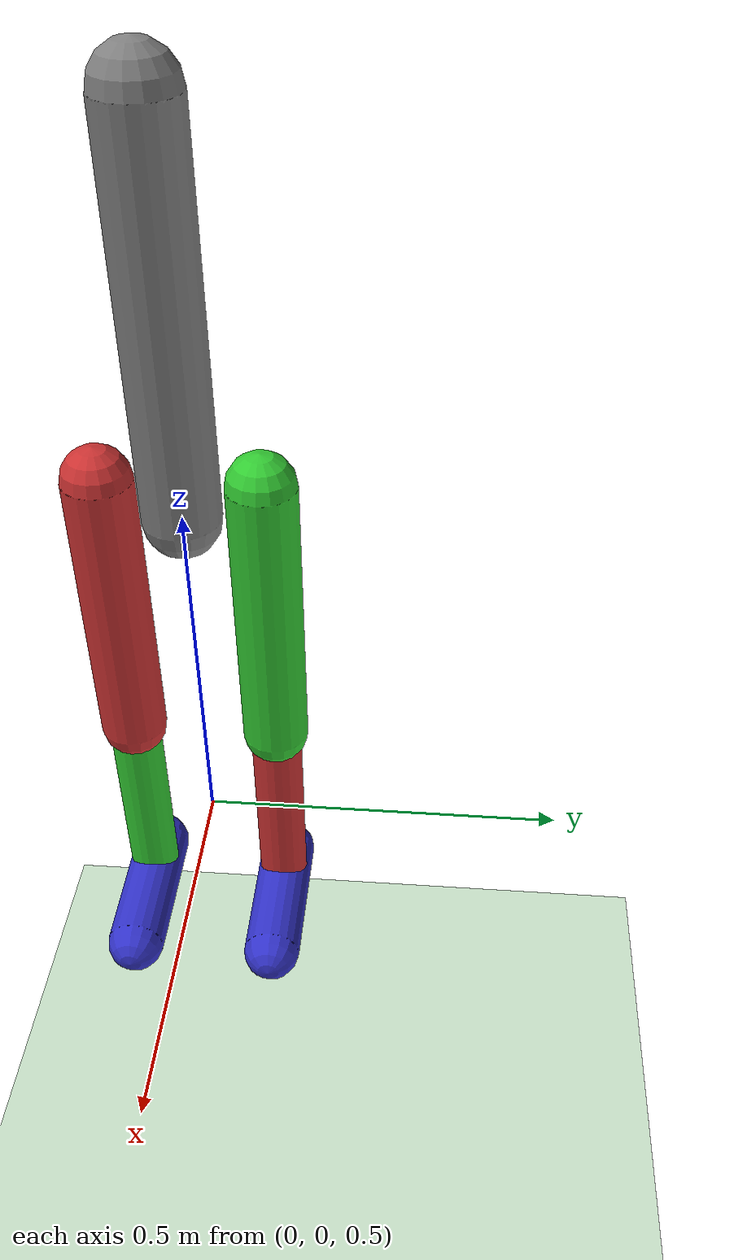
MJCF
<mujoco model="biped_robot">
  <compiler angle="degree" inertiafromgeom="true" />
  <option integrator="RK4" timestep="0.002" />
  <default>
    <joint armature="0.01" damping="0.1" limited="true" />
    <geom conaffinity="1" condim="3" contype="1" friction="0.9 0.1 0.1" density="1000" />
  </default>
  <worldbody>
    <light pos="0 0 1.3" dir="0 0 -1" diffuse="1 1 1" />
    <geom name="floor" type="plane" pos="0 0 0" size="40 40 40" rgba="0.8 0.9 0.8 1" />
    <body name="torso" pos="0 0 1.25">
      <joint name="torso_x" type="slide" axis="1 0 0" limited="false" />
      <joint name="torso_y" type="hinge" axis="0 1 0" limited="false" />
      <joint name="torso_z" type="slide" axis="0 0 1" limited="false" />
      <geom name="torso_geom" type="capsule" fromto="0 0 0.25 0 0 -0.25" size="0.05" />
      <body name="right_thigh" pos="0 -0.1 -0.2">
        <joint name="right_hip" type="hinge" axis="0 1 0" range="-30 30" />
        <geom name="right_thigh_geom" type="capsule" fromto="0 0 0 0 0 -0.4" size="0.045"
          rgba="0.8 0.2 0.2 1" />
        <body name="right_shin" pos="0 0 -0.4">
          <joint name="right_knee" type="hinge" axis="0 1 0" range="-90 0" />
          <geom name="right_shin_geom" type="capsule" fromto="0 0 0 0 0 -0.3" size="0.035"
            rgba="0.2 0.8 0.2 1" />
          <body name="right_foot" pos="0 0 -0.3">
            <joint name="right_ankle" type="hinge" axis="0 1 0" range="-30 30" />
            <geom name="right_foot_geom" type="capsule" fromto="-0.05 0 0 0.15 0 0" size="0.04"
              rgba="0.2 0.2 0.8 1" />
          </body>
        </body>
      </body>
      <body name="left_thigh" pos="0 0.1 -0.2">
        <joint name="left_hip" type="hinge" axis="0 1 0" range="-30 30" />
        <geom name="left_thigh_geom" type="capsule" fromto="0 0 0 0 0 -0.4" size="0.045"
          rgba="0.2 0.8 0.2 1" />
        <body name="left_shin" pos="0 0 -0.4">
          <joint name="left_knee" type="hinge" axis="0 1 0" range="-90 0" />
          <geom name="left_shin_geom" type="capsule" fromto="0 0 0 0 0 -0.3" size="0.035"
            rgba="0.8 0.2 0.2 1" />
          <body name="left_foot" pos="0 0 -0.3">
            <joint name="left_ankle" type="hinge" axis="0 1 0" range="-30 30" />
            <geom name="left_foot_geom" type="capsule" fromto="-0.05 0 0 0.15 0 0" size="0.04"
              rgba="0.2 0.2 0.8 1" />
          </body>
        </body>
      </body>
    </body>
  </worldbody>
  <actuator>
    <motor name="left_hip_motor" joint="left_hip" gear="100" ctrlrange="-1 1" ctrllimited="true" />
    <motor name="left_knee_motor" joint="left_knee" gear="50" ctrlrange="-1 1" ctrllimited="true" />
    <motor name="left_ankle_motor" joint="left_ankle" gear="20" ctrlrange="-1 1" ctrllimited="true" />
    <motor name="right_hip_motor" joint="right_hip" gear="100" ctrlrange="-1 1" ctrllimited="true" />
    <motor name="right_knee_motor" joint="right_knee" gear="50" ctrlrange="-1 1" ctrllimited="true" />
    <motor name="right_ankle_motor" joint="right_ankle" gear="20" ctrlrange="-1 1"
      ctrllimited="true" />
  </actuator>
</mujoco>
